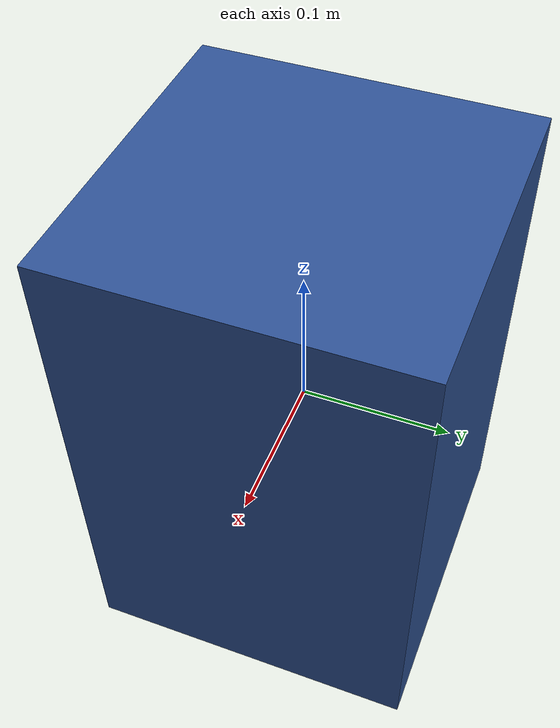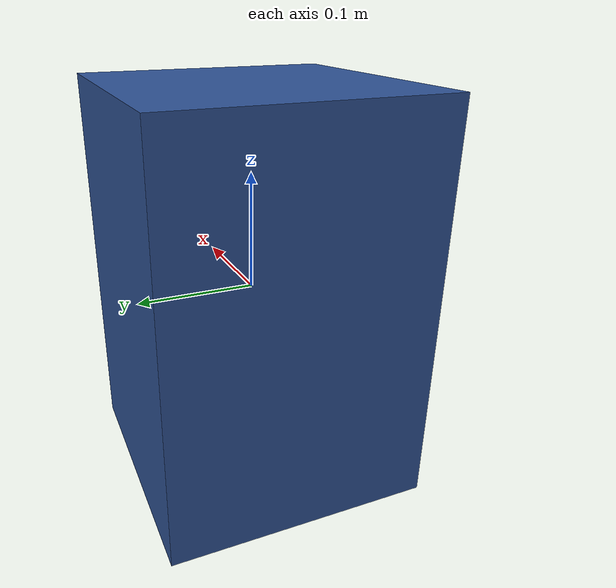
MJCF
<mujoco model="cubesat_so101">
  <compiler angle="radian" autolimits="true"/>

  <!-- Match the SO-101 contact solver while disabling terrestrial gravity. -->
  <option gravity="0 0 0" integrator="implicitfast" timestep="0.005" cone="elliptic"
    iterations="10" ls_iterations="20" impratio="10"/>

  <worldbody>
    <body name="cubesat_bus">
      <!-- Placeholder 12U bus: 24 kg, 0.2263 x 0.2263 x 0.3405 m. -->
      <freejoint name="cubesat_free"/>
      <inertial pos="0 0 0" mass="24"
        fullinertia="0.33430388 0.33430388 0.20484676 0 0 0"/>

      <!-- Visual and contact geometry are separate so either can be refined independently. -->
      <geom name="cubesat_visual" type="box" size="0.11315 0.11315 0.17025"
        mass="0" contype="0" conaffinity="0" group="2" rgba="0.18 0.32 0.58 1"/>
      <geom name="cubesat_collision" type="box" size="0.11315 0.11315 0.17025"
        mass="0" group="3" rgba="0.18 0.32 0.58 0"/>

      <site name="cubesat_origin" pos="0 0 0" size="0.003" group="4" rgba="1 1 1 1"/>
    </body>
  </worldbody>
</mujoco>
